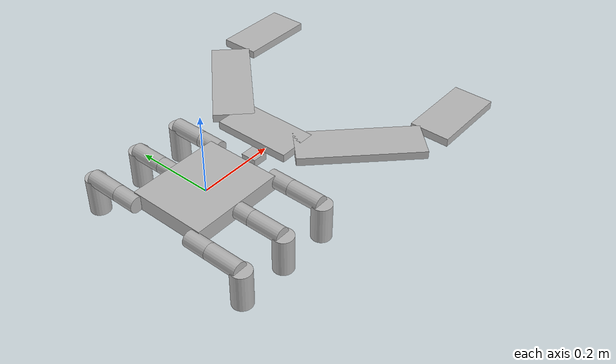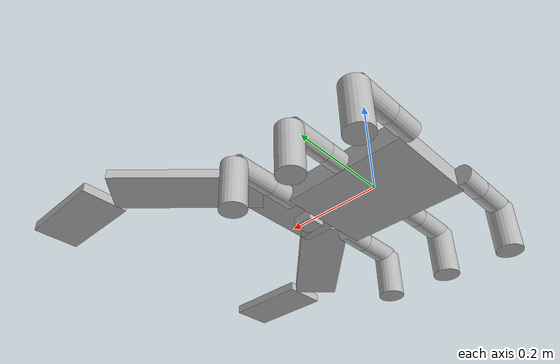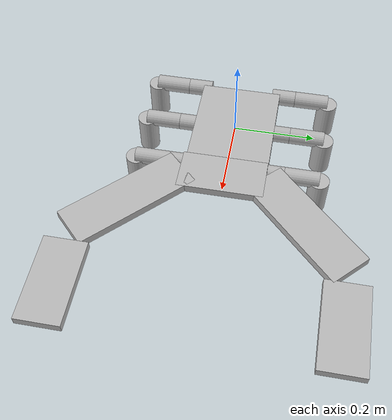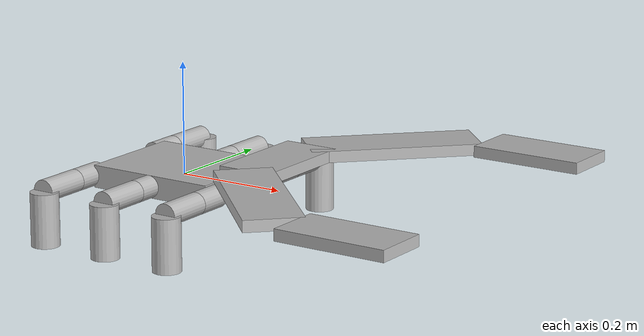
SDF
<?xml version="1.0" ?>
<sdf version="1.5">
  <model name="HW11">

    <include>
      <uri>model://simple_gripper</uri>
      <pose>0.2 0 0 0 0 0</pose>
    </include>

    <include>
      <uri>model://hexapod_base</uri>
      <pose>0 0 0 0 0 0</pose>
    </include>

    <joint name="gripper_joint" type="fixed">
      <parent>haexapod_base::base_link</parent>
      <child>simple_gripper::riser</child>
    </joint>

  </model>
</sdf>

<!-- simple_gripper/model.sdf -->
<sdf version="1.4">
    <model name="simple_gripper">
        <link name="riser">
            <pose>-0.04 0.0 0.0 0 0 0</pose>
            <inertial>
                <pose>0 0 -0.5 0 0 0</pose>
                <inertia>
                    <ixx>0.01</ixx>
                    <ixy>0</ixy>
                    <ixz>0</ixz>
                    <iyy>0.01</iyy>
                    <iyz>0</iyz>
                    <izz>0.01</izz>
                </inertia>
                <mass>5</mass>
            </inertial>
            <collision name="collision">
                <geometry>
                    <box>
                        <size>0.04 0.04 0.02</size>
                    </box>
                </geometry>
            </collision>
            <visual name="visual">
                <geometry>
                    <box>
                        <size>0.04 0.04 0.02</size>
                    </box>
                </geometry>
                <material>
                    <script>Gazebo/Purple</script>
                </material>
            </visual>
        </link>
        <link name="palm">
            <pose>0.0 0.0 0.05 0 0 0</pose>
            <inertial>
                <inertia>
                    <ixx>0.01</ixx>
                    <ixy>0</ixy>
                    <ixz>0</ixz>
                    <iyy>0.01</iyy>
                    <iyz>0</iyz>
                    <izz>0.01</izz>
                </inertia>
                <mass>0.5</mass>
            </inertial>
            <collision name="collision">
                <geometry>
                    <box>
                        <size>0.1 0.2 0.02</size>
                    </box>
                </geometry>
            </collision>
            <visual name="visual">
                <geometry>
                    <box>
                        <size>0.1 0.2 0.02</size>
                    </box>
                </geometry>
                <material>
                    <script>Gazebo/Red</script>
                </material>
            </visual>
        </link>
        <link name="left_finger">
            <pose>0.1 0.2 0.05 0 0 -0.78539</pose>
            <inertial>
                <inertia>
                    <ixx>0.01</ixx>
                    <ixy>0</ixy>
                    <ixz>0</ixz>
                    <iyy>0.01</iyy>
                    <iyz>0</iyz>
                    <izz>0.01</izz>
                </inertia>
                <mass>0.1</mass>
            </inertial>
            <collision name="collision">
                <geometry>
                    <box>
                        <size>0.1 0.3 0.02</size>
                    </box>
                </geometry>
            </collision>
            <visual name="visual">
                <geometry>
                    <box>
                        <size>0.1 0.3 0.02</size>
                    </box>
                </geometry>
                <material>
                    <script>Gazebo/Blue</script>
                </material>
            </visual>
        </link>
        <link name="left_finger_tip">
            <pose>0.336 0.3 0.05 0 0 1.5707</pose>
            <inertial>
                <inertia>
                    <ixx>0.01</ixx>
                    <ixy>0</ixy>
                    <ixz>0</ixz>
                    <iyy>0.01</iyy>
                    <iyz>0</iyz>
                    <izz>0.01</izz>
                </inertia>
                <mass>0.1</mass>
            </inertial>
            <collision name="collision">
                <geometry>
                    <box>
                        <size>0.1 0.2 0.02</size>
                    </box>
                </geometry>
            </collision>
            <visual name="visual">
                <geometry>
                    <box>
                        <size>0.1 0.2 0.02</size>
                    </box>
                </geometry>
                <material>
                    <script>Gazebo/Blue</script>
                </material>
            </visual>
        </link>
        <link name="right_finger">
            <pose>0.1 -0.2 0.05 0 0 .78539</pose>
            <inertial>
                <inertia>
                    <ixx>0.01</ixx>
                    <ixy>0</ixy>
                    <ixz>0</ixz>
                    <iyy>0.01</iyy>
                    <iyz>0</iyz>
                    <izz>0.01</izz>
                </inertia>
                <mass>0.1</mass>
            </inertial>
            <collision name="collision">
                <geometry>
                    <box>
                        <size>0.1 0.3 0.02</size>
                    </box>
                </geometry>
            </collision>
            <visual name="visual">
                <geometry>
                    <box>
                        <size>0.1 0.3 0.02</size>
                    </box>
                </geometry>
                <material>
                    <script>Gazebo/Green</script>
                </material>
            </visual>
        </link>
        <link name="right_finger_tip">
            <pose>0.336 -0.3 0.05 0 0 1.5707</pose>
            <inertial>
                <inertia>
                    <ixx>0.01</ixx>
                    <ixy>0</ixy>
                    <ixz>0</ixz>
                    <iyy>0.01</iyy>
                    <iyz>0</iyz>
                    <izz>0.01</izz>
                </inertia>
                <mass>0.1</mass>
            </inertial>
            <collision name="collision">
                <geometry>
                    <box>
                        <size>0.1 0.2 0.02</size>
                    </box>
                </geometry>
            </collision>
            <visual name="visual">
                <geometry>
                    <box>
                        <size>0.1 0.2 0.02</size>
                    </box>
                </geometry>
                <material>
                    <script>Gazebo/Green</script>
                </material>
            </visual>
        </link>
        <static>false</static>
 <joint name="palm_left_finger" type="revolute">
            <pose>0 -0.15 0 0 0 0</pose>
            <child>left_finger</child>
            <parent>palm</parent>
            <axis>
                <limit>
                    <lower>-0.4</lower>
                    <upper>0.4</upper>
                </limit>
                <xyz>0 0 1</xyz>
            </axis>
        </joint>
        <joint name="left_finger_tip" type="revolute">
            <pose>0 0.1 0 0 0 0</pose>
            <child>left_finger_tip</child>
            <parent>left_finger</parent>
            <axis>
                <limit>
                    <lower>-0.4</lower>
                    <upper>0.4</upper>
                </limit>
                <xyz>0 0 1</xyz>
            </axis>
        </joint>
        <joint name="palm_right_finger" type="revolute">
            <pose>0 0.15 0 0 0 0</pose>
            <child>right_finger</child>
            <parent>palm</parent>
            <axis>
                <limit>
                    <lower>-0.4</lower>
                    <upper>0.4</upper>
                </limit>
                <xyz>0 0 1</xyz>
            </axis>
        </joint>
        <joint name="right_finger_tip" type="revolute">
            <pose>0 0.1 0 0 0 0</pose>
            <child>right_finger_tip</child>
            <parent>right_finger</parent>
            <axis>
                <limit>
                    <lower>-0.4</lower>
                    <upper>0.4</upper>
                </limit>
                <xyz>0 0 1</xyz>
            </axis>
        </joint>
        <joint name="palm_riser" type="prismatic">
            <child>palm</child>
            <parent>riser</parent>
            <axis>
                <limit>
                    <lower>0</lower>
                    <upper>0.9</upper>
                </limit>
                <xyz>0 0 1</xyz>
            </axis>
        </joint>
   </model>
</sdf>

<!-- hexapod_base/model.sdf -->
<sdf version='1.5'>
  <model name='hexapod'>

    <link name='base_link'>
      <pose>0 0 0 0 -0 0</pose>
      <inertial>
        <pose>0 0 0 0 -0 0</pose>
        <mass>1.031</mass>
        <inertia>
          <ixx>0.00357413</ixx>
          <ixy>0</ixy>
          <ixz>0</ixz>
          <iyy>0.00508627</iyy>
          <iyz>0</iyz>
          <izz>0.00838547</izz>
        </inertia>
      </inertial>
      <collision name='base_link_collision'>
        <pose>0 0 0 0 -0 0</pose>
        <geometry>
          <box>
            <size>0.24 0.2 0.04</size>
          </box>
        </geometry>
      </collision>
      <visual name='base_link_visual'>
        <pose>0 0 0 0 -0 0</pose>
        <geometry>
          <box>
            <size>0.24 0.2 0.04</size>
          </box>
        </geometry>
      </visual>
    </link>
    <link name='leg_0_1'>
      <pose>0.12 -0.08 0 0 -0 0</pose>
      <inertial>
        <pose>0.01 -0.03 0 1.5708 -0 0</pose>
        <mass>0.02</mass>
        <inertia>
          <ixx>8e-06</ixx>
          <ixy>0</ixy>
          <ixz>0</ixz>
          <iyy>8e-06</iyy>
          <iyz>0</iyz>
          <izz>6.66667e-07</izz>
        </inertia>
      </inertial>
      <collision name='leg_0_1_collision'>
        <pose>0.01 -0.03 0 1.5708 -0 0</pose>
        <geometry>
          <cylinder>
            <length>0.06</length>
            <radius>0.02</radius>
          </cylinder>
        </geometry>
      </collision>
      <visual name='leg_0_1_visual'>
        <pose>0.01 -0.03 0 1.5708 -0 0</pose>
        <geometry>
          <cylinder>
            <length>0.06</length>
            <radius>0.02</radius>
          </cylinder>
        </geometry>
      </visual>
    </link>
    <joint name='body_leg_0' type='revolute'>
      <child>leg_0_1</child>
      <parent>base_link</parent>
      <axis>
        <xyz>0 0 1</xyz>
        <limit>
          <lower>-0.785398</lower>
          <upper>0.785398</upper>
          <effort>20</effort>
          <velocity>2</velocity>
        </limit>
        <dynamics>
          <spring_reference>0</spring_reference>
          <spring_stiffness>0</spring_stiffness>
        </dynamics>
        <use_parent_model_frame>1</use_parent_model_frame>
      </axis>
    </joint>
    <link name='leg_0_2'>
      <pose>0.12 -0.14 0 0 -0 0</pose>
      <inertial>
        <pose>0.01 -0.0425 0 1.5708 -0 0</pose>
        <mass>0.184</mass>
        <inertia>
          <ixx>0.000129183</ixx>
          <ixy>0</ixy>
          <ixz>0</ixz>
          <iyy>0.000129183</iyy>
          <iyz>0</iyz>
          <izz>6.13333e-06</izz>
        </inertia>
      </inertial>
      <collision name='leg_0_2_collision'>
        <pose>0.01 -0.0425 0 1.5708 -0 0</pose>
        <geometry>
          <cylinder>
            <length>0.085</length>
            <radius>0.02</radius>
          </cylinder>
        </geometry>
      </collision>
      <visual name='leg_0_2_visual'>
        <pose>0.01 -0.0425 0 1.5708 -0 0</pose>
        <geometry>
          <cylinder>
            <length>0.085</length>
            <radius>0.02</radius>
          </cylinder>
        </geometry>
      </visual>
    </link>
    <joint name='leg_0_1_2' type='revolute'>
      <child>leg_0_2</child>
      <parent>leg_0_1</parent>
      <axis>
        <xyz>1 0 0</xyz>
        <limit>
          <lower>-0.785398</lower>
          <upper>0.785398</upper>
          <effort>20</effort>
          <velocity>2</velocity>
        </limit>
        <dynamics>
          <spring_reference>0</spring_reference>
          <spring_stiffness>0</spring_stiffness>
        </dynamics>
        <use_parent_model_frame>1</use_parent_model_frame>
      </axis>
    </joint>

    <link name='leg_0_3'>
      <pose>0.12 -0.225 0 1.5708 -0 0</pose>
      <inertial>
        <pose>0.0125 -0.0475 0 1.5708 -0 0</pose>
        <mass>0.184</mass>
        <inertia>
          <ixx>0.000129183</ixx>
          <ixy>0</ixy>
          <ixz>0</ixz>
          <iyy>0.000129183</iyy>
          <iyz>0</iyz>
          <izz>6.13333e-06</izz>
        </inertia>
      </inertial>
      <collision name='leg_0_3_collision'>
        <pose>0.0125 -0.0475 0 1.5708 -0 0</pose>
        <geometry>
          <cylinder>
            <length>0.095</length>
            <radius>0.025</radius>
          </cylinder>
        </geometry>
      </collision>
      <visual name='leg_0_3_visual'>
        <pose>0.0125 -0.0475 0 1.5708 -0 0</pose>
        <geometry>
          <cylinder>
            <length>0.095</length>
            <radius>0.025</radius>
          </cylinder>
        </geometry>
      </visual>
    </link>

    <joint name='leg_0_2_3' type='revolute'>
      <child>leg_0_3</child>
      <parent>leg_0_2</parent>
      <axis>
        <xyz>1 0 0</xyz>
        <limit>
          <lower>-0.785398</lower>
          <upper>0.785398</upper>
          <effort>20</effort>
          <velocity>2</velocity>
        </limit>
        <dynamics>
          <spring_reference>0</spring_reference>
          <spring_stiffness>0</spring_stiffness>
        </dynamics>
        <use_parent_model_frame>1</use_parent_model_frame>
      </axis>
    </joint>

    <link name='leg_1_1'>
      <pose>-0.01 -0.08 0 0 -0 0</pose>
      <inertial>
        <pose>0.01 -0.03 0 1.5708 -0 0</pose>
        <mass>0.02</mass>
        <inertia>
          <ixx>8e-06</ixx>
          <ixy>0</ixy>
          <ixz>0</ixz>
          <iyy>8e-06</iyy>
          <iyz>0</iyz>
          <izz>6.66667e-07</izz>
        </inertia>
      </inertial>
      <collision name='leg_1_1_collision'>
        <pose>0.01 -0.03 0 1.5708 -0 0</pose>
        <geometry>
          <cylinder>
            <length>0.06</length>
            <radius>0.02</radius>
          </cylinder>
        </geometry>
      </collision>
      <visual name='leg_1_1_visual'>
        <pose>0.01 -0.03 0 1.5708 -0 0</pose>
        <geometry>
          <cylinder>
            <length>0.06</length>
            <radius>0.02</radius>
          </cylinder>
        </geometry>
      </visual>
    </link>
    <joint name='body_leg_1' type='revolute'>
      <child>leg_1_1</child>
      <parent>base_link</parent>
      <axis>
        <xyz>0 0 1</xyz>
        <limit>
          <lower>-0.785398</lower>
          <upper>0.785398</upper>
          <effort>20</effort>
          <velocity>2</velocity>
        </limit>
        <dynamics>
          <spring_reference>0</spring_reference>
          <spring_stiffness>0</spring_stiffness>
        </dynamics>
        <use_parent_model_frame>1</use_parent_model_frame>
      </axis>
    </joint>
    <link name='leg_1_2'>
      <pose>-0.01 -0.14 0 0 -0 0</pose>
      <inertial>
        <pose>0.01 -0.0425 0 1.5708 -0 0</pose>
        <mass>0.184</mass>
        <inertia>
          <ixx>0.000129183</ixx>
          <ixy>0</ixy>
          <ixz>0</ixz>
          <iyy>0.000129183</iyy>
          <iyz>0</iyz>
          <izz>6.13333e-06</izz>
        </inertia>
      </inertial>
      <collision name='leg_1_2_collision'>
        <pose>0.01 -0.0425 0 1.5708 -0 0</pose>
        <geometry>
          <cylinder>
            <length>0.085</length>
            <radius>0.02</radius>
          </cylinder>
        </geometry>
      </collision>
      <visual name='leg_1_2_visual'>
        <pose>0.01 -0.0425 0 1.5708 -0 0</pose>
        <geometry>
          <cylinder>
            <length>0.085</length>
            <radius>0.02</radius>
          </cylinder>
        </geometry>
      </visual>
    </link>
    <joint name='leg_1_1_2' type='revolute'>
      <child>leg_1_2</child>
      <parent>leg_1_1</parent>
      <axis>
        <xyz>1 0 0</xyz>
        <limit>
          <lower>-0.785398</lower>
          <upper>0.785398</upper>
          <effort>20</effort>
          <velocity>2</velocity>
        </limit>
        <dynamics>
          <spring_reference>0</spring_reference>
          <spring_stiffness>0</spring_stiffness>
        </dynamics>
        <use_parent_model_frame>1</use_parent_model_frame>
      </axis>
    </joint>
    <link name='leg_1_3'>
      <pose>-0.01 -0.225 0 1.5708 -0 0</pose>
      <inertial>
        <pose>0.0125 -0.0475 0 1.5708 -0 0</pose>
        <mass>0.184</mass>
        <inertia>
          <ixx>0.000129183</ixx>
          <ixy>0</ixy>
          <ixz>0</ixz>
          <iyy>0.000129183</iyy>
          <iyz>0</iyz>
          <izz>6.13333e-06</izz>
        </inertia>
      </inertial>
      <collision name='leg_1_3_collision'>
        <pose>0.0125 -0.0475 0 1.5708 -0 0</pose>
        <geometry>
          <cylinder>
            <length>0.095</length>
            <radius>0.025</radius>
          </cylinder>
        </geometry>
      </collision>
      <visual name='leg_1_3_visual'>
        <pose>0.0125 -0.0475 0 1.5708 -0 0</pose>
        <geometry>
          <cylinder>
            <length>0.095</length>
            <radius>0.025</radius>
          </cylinder>
        </geometry>
      </visual>
    </link>
    <joint name='leg_1_2_3' type='revolute'>
      <child>leg_1_3</child>
      <parent>leg_1_2</parent>
      <axis>
        <xyz>1 0 0</xyz>
        <limit>
          <lower>-0.785398</lower>
          <upper>0.785398</upper>
          <effort>20</effort>
          <velocity>2</velocity>
        </limit>
        <dynamics>
          <spring_reference>0</spring_reference>
          <spring_stiffness>0</spring_stiffness>
        </dynamics>
        <use_parent_model_frame>1</use_parent_model_frame>
      </axis>
    </joint>

    <link name='leg_2_1'>
      <pose>-0.14 -0.08 0 0 -0 0</pose>
      <inertial>
        <pose>0.01 -0.03 0 1.5708 -0 0</pose>
        <mass>0.02</mass>
        <inertia>
          <ixx>8e-06</ixx>
          <ixy>0</ixy>
          <ixz>0</ixz>
          <iyy>8e-06</iyy>
          <iyz>0</iyz>
          <izz>6.66667e-07</izz>
        </inertia>
      </inertial>
      <collision name='leg_2_1_collision'>
        <pose>0.01 -0.03 0 1.5708 -0 0</pose>
        <geometry>
          <cylinder>
            <length>0.06</length>
            <radius>0.02</radius>
          </cylinder>
        </geometry>
      </collision>
      <visual name='leg_2_1_visual'>
        <pose>0.01 -0.03 0 1.5708 -0 0</pose>
        <geometry>
          <cylinder>
            <length>0.06</length>
            <radius>0.02</radius>
          </cylinder>
        </geometry>
      </visual>
    </link>
    <joint name='body_leg_2' type='revolute'>
      <child>leg_2_1</child>
      <parent>base_link</parent>
      <axis>
        <xyz>0 0 1</xyz>
        <limit>
          <lower>-0.785398</lower>
          <upper>0.785398</upper>
          <effort>20</effort>
          <velocity>2</velocity>
        </limit>
        <dynamics>
          <spring_reference>0</spring_reference>
          <spring_stiffness>0</spring_stiffness>
        </dynamics>
        <use_parent_model_frame>1</use_parent_model_frame>
      </axis>
    </joint>
    <link name='leg_2_2'>
      <pose>-0.14 -0.14 0 0 -0 0</pose>
      <inertial>
        <pose>0.01 -0.0425 0 1.5708 -0 0</pose>
        <mass>0.184</mass>
        <inertia>
          <ixx>0.000129183</ixx>
          <ixy>0</ixy>
          <ixz>0</ixz>
          <iyy>0.000129183</iyy>
          <iyz>0</iyz>
          <izz>6.13333e-06</izz>
        </inertia>
      </inertial>
      <collision name='leg_2_2_collision'>
        <pose>0.01 -0.0425 0 1.5708 -0 0</pose>
        <geometry>
          <cylinder>
            <length>0.085</length>
            <radius>0.02</radius>
          </cylinder>
        </geometry>
      </collision>
      <visual name='leg_2_2_visual'>
        <pose>0.01 -0.0425 0 1.5708 -0 0</pose>
        <geometry>
          <cylinder>
            <length>0.085</length>
            <radius>0.02</radius>
          </cylinder>
        </geometry>
      </visual>
    </link>
    <joint name='leg_2_1_2' type='revolute'>
      <child>leg_2_2</child>
      <parent>leg_2_1</parent>
      <axis>
        <xyz>1 0 0</xyz>
        <limit>
          <lower>-0.785398</lower>
          <upper>0.785398</upper>
          <effort>20</effort>
          <velocity>2</velocity>
        </limit>
        <dynamics>
          <spring_reference>0</spring_reference>
          <spring_stiffness>0</spring_stiffness>
        </dynamics>
        <use_parent_model_frame>1</use_parent_model_frame>
      </axis>
    </joint>
    <link name='leg_2_3'>
      <pose>-0.14 -0.225 0 1.5708 -0 0</pose>
      <inertial>
        <pose>0.0125 -0.0475 0 1.5708 -0 0</pose>
        <mass>0.184</mass>
        <inertia>
          <ixx>0.000129183</ixx>
          <ixy>0</ixy>
          <ixz>0</ixz>
          <iyy>0.000129183</iyy>
          <iyz>0</iyz>
          <izz>6.13333e-06</izz>
        </inertia>
      </inertial>
      <collision name='leg_2_3_collision'>
        <pose>0.0125 -0.0475 0 1.5708 -0 0</pose>
        <geometry>
          <cylinder>
            <length>0.095</length>
            <radius>0.025</radius>
          </cylinder>
        </geometry>
      </collision>
      <visual name='leg_2_3_visual'>
        <pose>0.0125 -0.0475 0 1.5708 -0 0</pose>
        <geometry>
          <cylinder>
            <length>0.095</length>
            <radius>0.025</radius>
          </cylinder>
        </geometry>
      </visual>
    </link>
    <joint name='leg_2_2_3' type='revolute'>
      <child>leg_2_3</child>
      <parent>leg_2_2</parent>
      <axis>
        <xyz>1 0 0</xyz>
        <limit>
          <lower>-0.785398</lower>
          <upper>0.785398</upper>
          <effort>20</effort>
          <velocity>2</velocity>
        </limit>
        <dynamics>
          <spring_reference>0</spring_reference>
          <spring_stiffness>0</spring_stiffness>
        </dynamics>
        <use_parent_model_frame>1</use_parent_model_frame>
      </axis>
    </joint>

    <link name='leg_3_1'>
      <pose>-0.14 0.08 0 0 -0 0</pose>
      <inertial>
        <pose>0.01 0.03 0 1.5708 -0 0</pose>
        <mass>0.02</mass>
        <inertia>
          <ixx>8e-06</ixx>
          <ixy>0</ixy>
          <ixz>0</ixz>
          <iyy>8e-06</iyy>
          <iyz>0</iyz>
          <izz>6.66667e-07</izz>
        </inertia>
      </inertial>
      <collision name='leg_3_1_collision'>
        <pose>0.01 0.03 0 1.5708 -0 0</pose>
        <geometry>
          <cylinder>
            <length>0.06</length>
            <radius>0.02</radius>
          </cylinder>
        </geometry>
      </collision>
      <visual name='leg_3_1_visual'>
        <pose>0.01 0.03 0 1.5708 -0 0</pose>
        <geometry>
          <cylinder>
            <length>0.06</length>
            <radius>0.02</radius>
          </cylinder>
        </geometry>
      </visual>
    </link>
    <joint name='body_leg_3' type='revolute'>
      <child>leg_3_1</child>
      <parent>base_link</parent>
      <axis>
        <xyz>0 0 1</xyz>
        <limit>
          <lower>-0.785398</lower>
          <upper>0.785398</upper>
          <effort>20</effort>
          <velocity>2</velocity>
        </limit>
        <dynamics>
          <spring_reference>0</spring_reference>
          <spring_stiffness>0</spring_stiffness>
        </dynamics>
        <use_parent_model_frame>1</use_parent_model_frame>
      </axis>
    </joint>
    <link name='leg_3_2'>
      <pose>-0.14 0.14 0 0 -0 0</pose>
      <inertial>
        <pose>0.01 0.0425 0 1.5708 -0 0</pose>
        <mass>0.184</mass>
        <inertia>
          <ixx>0.000129183</ixx>
          <ixy>0</ixy>
          <ixz>0</ixz>
          <iyy>0.000129183</iyy>
          <iyz>0</iyz>
          <izz>6.13333e-06</izz>
        </inertia>
      </inertial>
      <collision name='leg_3_2_collision'>
        <pose>0.01 0.0425 0 1.5708 -0 0</pose>
        <geometry>
          <cylinder>
            <length>0.085</length>
            <radius>0.02</radius>
          </cylinder>
        </geometry>
      </collision>
      <visual name='leg_3_2_visual'>
        <pose>0.01 0.0425 0 1.5708 -0 0</pose>
        <geometry>
          <cylinder>
            <length>0.085</length>
            <radius>0.02</radius>
          </cylinder>
        </geometry>
      </visual>
    </link>
    <joint name='leg_3_1_2' type='revolute'>
      <child>leg_3_2</child>
      <parent>leg_3_1</parent>
      <axis>
        <xyz>1 0 0</xyz>
        <limit>
          <lower>-0.785398</lower>
          <upper>0.785398</upper>
          <effort>20</effort>
          <velocity>2</velocity>
        </limit>
        <dynamics>
          <spring_reference>0</spring_reference>
          <spring_stiffness>0</spring_stiffness>
        </dynamics>
        <use_parent_model_frame>1</use_parent_model_frame>
      </axis>
    </joint>
    <link name='leg_3_3'>
      <pose>-0.14 0.225 0 -1.5708 0 0</pose>
      <inertial>
        <pose>0.0125 0.0475 0 1.5708 -0 0</pose>
        <mass>0.184</mass>
        <inertia>
          <ixx>0.000129183</ixx>
          <ixy>0</ixy>
          <ixz>0</ixz>
          <iyy>0.000129183</iyy>
          <iyz>0</iyz>
          <izz>6.13333e-06</izz>
        </inertia>
      </inertial>
      <collision name='leg_3_3_collision'>
        <pose>0.0125 0.0475 0 1.5708 -0 0</pose>
        <geometry>
          <cylinder>
            <length>0.095</length>
            <radius>0.025</radius>
          </cylinder>
        </geometry>
      </collision>
      <visual name='leg_3_3_visual'>
        <pose>0.0125 0.0475 0 1.5708 -0 0</pose>
        <geometry>
          <cylinder>
            <length>0.095</length>
            <radius>0.025</radius>
          </cylinder>
        </geometry>
      </visual>
    </link>
    <joint name='leg_3_2_3' type='revolute'>
      <child>leg_3_3</child>
      <parent>leg_3_2</parent>
      <axis>
        <xyz>1 0 0</xyz>
        <limit>
          <lower>-0.785398</lower>
          <upper>0.785398</upper>
          <effort>20</effort>
          <velocity>2</velocity>
        </limit>
        <dynamics>
          <spring_reference>0</spring_reference>
          <spring_stiffness>0</spring_stiffness>
        </dynamics>
        <use_parent_model_frame>1</use_parent_model_frame>
      </axis>
    </joint>
    <link name='leg_4_1'>
      <pose>-0.01 0.08 0 0 -0 0</pose>
      <inertial>
        <pose>0.01 0.03 0 1.5708 -0 0</pose>
        <mass>0.02</mass>
        <inertia>
          <ixx>8e-06</ixx>
          <ixy>0</ixy>
          <ixz>0</ixz>
          <iyy>8e-06</iyy>
          <iyz>0</iyz>
          <izz>6.66667e-07</izz>
        </inertia>
      </inertial>
      <collision name='leg_4_1_collision'>
        <pose>0.01 0.03 0 1.5708 -0 0</pose>
        <geometry>
          <cylinder>
            <length>0.06</length>
            <radius>0.02</radius>
          </cylinder>
        </geometry>
      </collision>
      <visual name='leg_4_1_visual'>
        <pose>0.01 0.03 0 1.5708 -0 0</pose>
        <geometry>
          <cylinder>
            <length>0.06</length>
            <radius>0.02</radius>
          </cylinder>
        </geometry>
      </visual>
    </link>
    <joint name='body_leg_4' type='revolute'>
      <child>leg_4_1</child>
      <parent>base_link</parent>
      <axis>
        <xyz>0 0 1</xyz>
        <limit>
          <lower>-0.785398</lower>
          <upper>0.785398</upper>
          <effort>20</effort>
          <velocity>2</velocity>
        </limit>
        <dynamics>
          <spring_reference>0</spring_reference>
          <spring_stiffness>0</spring_stiffness>
        </dynamics>
        <use_parent_model_frame>1</use_parent_model_frame>
      </axis>
    </joint>
    <link name='leg_4_2'>
      <pose>-0.01 0.14 0 0 -0 0</pose>
      <inertial>
        <pose>0.01 0.0425 0 1.5708 -0 0</pose>
        <mass>0.184</mass>
        <inertia>
          <ixx>0.000129183</ixx>
          <ixy>0</ixy>
          <ixz>0</ixz>
          <iyy>0.000129183</iyy>
          <iyz>0</iyz>
          <izz>6.13333e-06</izz>
        </inertia>
      </inertial>
      <collision name='leg_4_2_collision'>
        <pose>0.01 0.0425 0 1.5708 -0 0</pose>
        <geometry>
          <cylinder>
            <length>0.085</length>
            <radius>0.02</radius>
          </cylinder>
        </geometry>
      </collision>
      <visual name='leg_4_2_visual'>
        <pose>0.01 0.0425 0 1.5708 -0 0</pose>
        <geometry>
          <cylinder>
            <length>0.085</length>
            <radius>0.02</radius>
          </cylinder>
        </geometry>
      </visual>
    </link>
    <joint name='leg_4_1_2' type='revolute'>
      <child>leg_4_2</child>
      <parent>leg_4_1</parent>
      <axis>
        <xyz>1 0 0</xyz>
        <limit>
          <lower>-0.785398</lower>
          <upper>0.785398</upper>
          <effort>20</effort>
          <velocity>2</velocity>
        </limit>
        <dynamics>
          <spring_reference>0</spring_reference>
          <spring_stiffness>0</spring_stiffness>
        </dynamics>
        <use_parent_model_frame>1</use_parent_model_frame>
      </axis>
    </joint>
    <link name='leg_4_3'>
      <pose>-0.01 0.225 0 -1.5708 0 0</pose>
      <inertial>
        <pose>0.0125 0.0475 0 1.5708 -0 0</pose>
        <mass>0.184</mass>
        <inertia>
          <ixx>0.000129183</ixx>
          <ixy>0</ixy>
          <ixz>0</ixz>
          <iyy>0.000129183</iyy>
          <iyz>0</iyz>
          <izz>6.13333e-06</izz>
        </inertia>
      </inertial>
      <collision name='leg_4_3_collision'>
        <pose>0.0125 0.0475 0 1.5708 -0 0</pose>
        <geometry>
          <cylinder>
            <length>0.095</length>
            <radius>0.025</radius>
          </cylinder>
        </geometry>
      </collision>
      <visual name='leg_4_3_visual'>
        <pose>0.0125 0.0475 0 1.5708 -0 0</pose>
        <geometry>
          <cylinder>
            <length>0.095</length>
            <radius>0.025</radius>
          </cylinder>
        </geometry>
      </visual>
    </link>
    <joint name='leg_4_2_3' type='revolute'>
      <child>leg_4_3</child>
      <parent>leg_4_2</parent>
      <axis>
        <xyz>1 0 0</xyz>
        <limit>
          <lower>-0.785398</lower>
          <upper>0.785398</upper>
          <effort>20</effort>
          <velocity>2</velocity>
        </limit>
        <dynamics>
          <spring_reference>0</spring_reference>
          <spring_stiffness>0</spring_stiffness>
        </dynamics>
        <use_parent_model_frame>1</use_parent_model_frame>
      </axis>
    </joint>
    <link name='leg_5_1'>
      <pose>0.12 0.08 0 0 -0 0</pose>
      <inertial>
        <pose>0.01 0.03 0 1.5708 -0 0</pose>
        <mass>0.02</mass>
        <inertia>
          <ixx>8e-06</ixx>
          <ixy>0</ixy>
          <ixz>0</ixz>
          <iyy>8e-06</iyy>
          <iyz>0</iyz>
          <izz>6.66667e-07</izz>
        </inertia>
      </inertial>
      <collision name='leg_5_1_collision'>
        <pose>0.01 0.03 0 1.5708 -0 0</pose>
        <geometry>
          <cylinder>
            <length>0.06</length>
            <radius>0.02</radius>
          </cylinder>
        </geometry>
      </collision>
      <visual name='leg_5_1_visual'>
        <pose>0.01 0.03 0 1.5708 -0 0</pose>
        <geometry>
          <cylinder>
            <length>0.06</length>
            <radius>0.02</radius>
          </cylinder>
        </geometry>
      </visual>
    </link>
    <joint name='body_leg_5' type='revolute'>
      <child>leg_5_1</child>
      <parent>base_link</parent>
      <axis>
        <xyz>0 0 1</xyz>
        <limit>
          <lower>-0.785398</lower>
          <upper>0.785398</upper>
          <effort>20</effort>
          <velocity>2</velocity>
        </limit>
        <dynamics>
          <spring_reference>0</spring_reference>
          <spring_stiffness>0</spring_stiffness>
        </dynamics>
        <use_parent_model_frame>1</use_parent_model_frame>
      </axis>
    </joint>
    <link name='leg_5_2'>
      <pose>0.12 0.14 0 0 -0 0</pose>
      <inertial>
        <pose>0.01 0.0425 0 1.5708 -0 0</pose>
        <mass>0.184</mass>
        <inertia>
          <ixx>0.000129183</ixx>
          <ixy>0</ixy>
          <ixz>0</ixz>
          <iyy>0.000129183</iyy>
          <iyz>0</iyz>
          <izz>6.13333e-06</izz>
        </inertia>
      </inertial>
      <collision name='leg_5_2_collision'>
        <pose>0.01 0.0425 0 1.5708 -0 0</pose>
        <geometry>
          <cylinder>
            <length>0.085</length>
            <radius>0.02</radius>
          </cylinder>
        </geometry>
      </collision>
      <visual name='leg_5_2_visual'>
        <pose>0.01 0.0425 0 1.5708 -0 0</pose>
        <geometry>
          <cylinder>
            <length>0.085</length>
            <radius>0.02</radius>
          </cylinder>
        </geometry>
      </visual>
    </link>
    <joint name='leg_5_1_2' type='revolute'>
      <child>leg_5_2</child>
      <parent>leg_5_1</parent>
      <axis>
        <xyz>1 0 0</xyz>
        <limit>
          <lower>-0.785398</lower>
          <upper>0.785398</upper>
          <effort>20</effort>
          <velocity>2</velocity>
        </limit>
        <dynamics>
          <spring_reference>0</spring_reference>
          <spring_stiffness>0</spring_stiffness>
        </dynamics>
        <use_parent_model_frame>1</use_parent_model_frame>
      </axis>
    </joint>
    <link name='leg_5_3'>
      <pose>0.12 0.225 0 -1.5708 0 0</pose>
      <inertial>
        <pose>0.0125 0.0475 0 1.5708 -0 0</pose>
        <mass>0.184</mass>
        <inertia>
          <ixx>0.000129183</ixx>
          <ixy>0</ixy>
          <ixz>0</ixz>
          <iyy>0.000129183</iyy>
          <iyz>0</iyz>
          <izz>6.13333e-06</izz>
        </inertia>
      </inertial>
      <collision name='leg_5_3_collision'>
        <pose>0.0125 0.0475 0 1.5708 -0 0</pose>
        <geometry>
          <cylinder>
            <length>0.095</length>
            <radius>0.025</radius>
          </cylinder>
        </geometry>
      </collision>
      <visual name='leg_5_3_visual'>
        <pose>0.0125 0.0475 0 1.5708 -0 0</pose>
        <geometry>
          <cylinder>
            <length>0.095</length>
            <radius>0.025</radius>
          </cylinder>
        </geometry>
      </visual>
    </link>
    <joint name='leg_5_2_3' type='revolute'>
      <child>leg_5_3</child>
      <parent>leg_5_2</parent>
      <axis>
        <xyz>1 0 0</xyz>
        <limit>
          <lower>-0.785398</lower>
          <upper>0.785398</upper>
          <effort>20</effort>
          <velocity>2</velocity>
        </limit>
        <dynamics>
          <spring_reference>0</spring_reference>
          <spring_stiffness>0</spring_stiffness>
        </dynamics>
        <use_parent_model_frame>1</use_parent_model_frame>
      </axis>
    </joint>

    <plugin name="pexod_control" filename="libpexod_plugin.so"/>

  </model>
</sdf>
